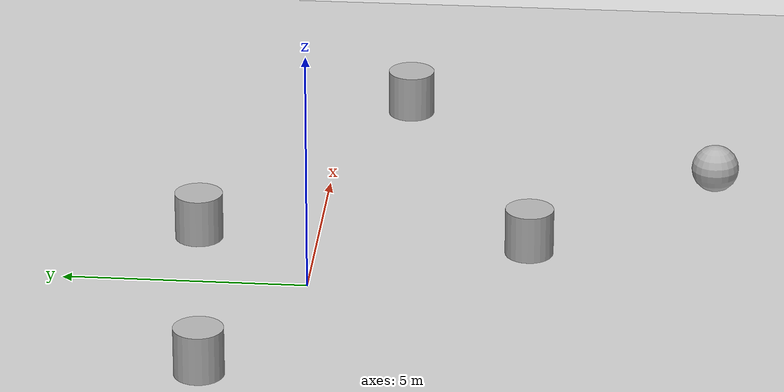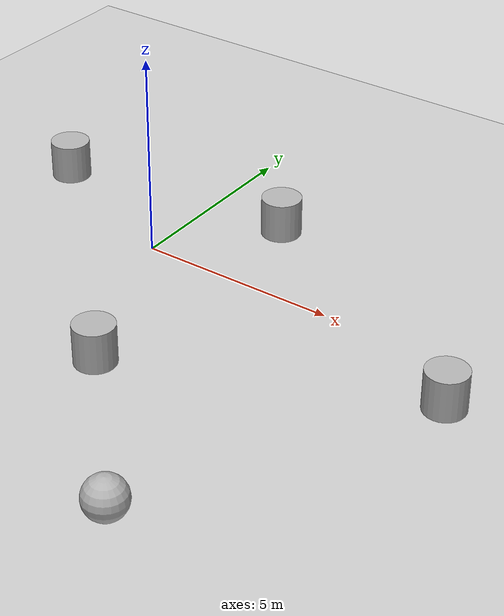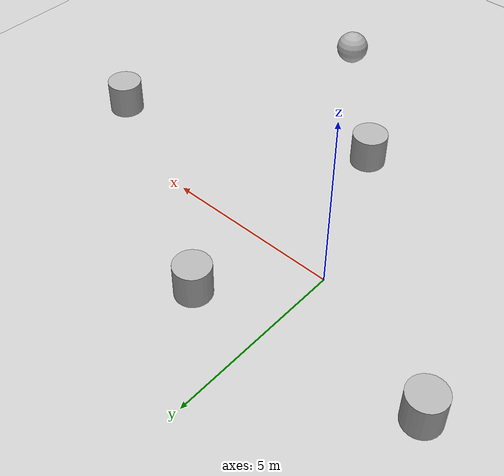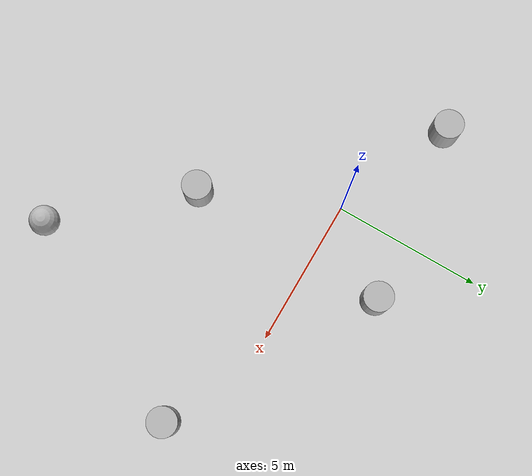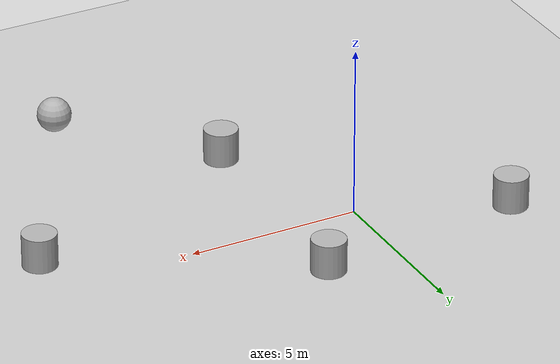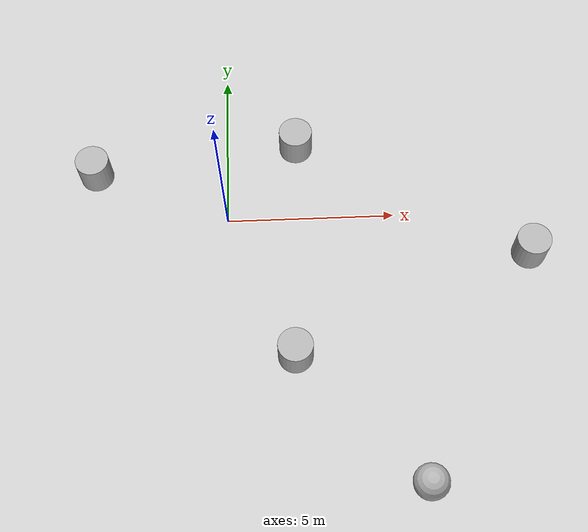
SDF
<sdf version='1.10'>
  <world name='default'>
    <physics name='1ms' type='ignored'>
      <max_step_size>0.001</max_step_size>
      <real_time_factor>1</real_time_factor>
      <real_time_update_rate>1000</real_time_update_rate>
    </physics>
    <gravity>0 0 -9.8000000000000007</gravity>
    <magnetic_field>5.5644999999999998e-06 2.2875799999999999e-05 -4.2388400000000002e-05</magnetic_field>
    <atmosphere type='adiabatic'/>
    <scene>
      <ambient>0.400000006 0.400000006 0.400000006 1</ambient>
      <background>0.699999988 0.699999988 0.699999988 1</background>
      <shadows>true</shadows>
    </scene>
    <model name='ground_plane'>
      <static>true</static>
      <link name='link'>
        <collision name='collision'>
          <geometry>
            <plane>
              <normal>0 0 1</normal>
              <size>100 100</size>
            </plane>
          </geometry>
          <surface>
            <friction>
              <ode/>
            </friction>
            <bounce/>
            <contact/>
          </surface>
        </collision>
        <visual name='visual'>
          <geometry>
            <plane>
              <normal>0 0 1</normal>
              <size>100 100</size>
            </plane>
          </geometry>
          <material>
            <ambient>0.800000012 0.800000012 0.800000012 1</ambient>
            <diffuse>0.800000012 0.800000012 0.800000012 1</diffuse>
            <specular>0.800000012 0.800000012 0.800000012 1</specular>
          </material>
        </visual>
        <pose>0 0 0 0 0 0</pose>
        <inertial>
          <pose>0 0 0 0 0 0</pose>
          <mass>1</mass>
          <inertia>
            <ixx>1</ixx>
            <ixy>0</ixy>
            <ixz>0</ixz>
            <iyy>1</iyy>
            <iyz>0</iyz>
            <izz>1</izz>
          </inertia>
        </inertial>
        <enable_wind>false</enable_wind>
      </link>
      <pose>0 0 0 0 0 0</pose>
      <self_collide>false</self_collide>
    </model>
    <model name='cylinder'>
      <pose>2.1223667236025392 2.4670150771113395 0.5 0 0 0</pose>
      <link name='cylinder_link'>
        <inertial>
          <inertia>
            <ixx>0.14580000000000001</ixx>
            <ixy>0</ixy>
            <ixz>0</ixz>
            <iyy>0.14580000000000001</iyy>
            <iyz>0</iyz>
            <izz>0.125</izz>
          </inertia>
          <mass>1</mass>
          <pose>0 0 0 0 0 0</pose>
        </inertial>
        <collision name='cylinder_collision'>
          <geometry>
            <cylinder>
              <radius>0.5</radius>
              <length>1</length>
            </cylinder>
          </geometry>
          <surface>
            <friction>
              <ode/>
            </friction>
            <bounce/>
            <contact/>
          </surface>
        </collision>
        <visual name='cylinder_visual'>
          <geometry>
            <cylinder>
              <radius>0.5</radius>
              <length>1</length>
            </cylinder>
          </geometry>
          <material>
            <ambient>0.300000012 0.300000012 0.300000012 1</ambient>
            <diffuse>0.699999988 0.699999988 0.699999988 1</diffuse>
            <specular>1 1 1 1</specular>
          </material>
        </visual>
        <pose>0 0 0 0 0 0</pose>
        <enable_wind>false</enable_wind>
      </link>
      <static>false</static>
      <self_collide>false</self_collide>
    </model>
    <model name='cylinder_0'>
      <pose>1.9041028659754673 -4.3957274092772964 0.5 0 0 0</pose>
      <link name='cylinder_link'>
        <inertial>
          <inertia>
            <ixx>0.14580000000000001</ixx>
            <ixy>0</ixy>
            <ixz>0</ixz>
            <iyy>0.14580000000000001</iyy>
            <iyz>0</iyz>
            <izz>0.125</izz>
          </inertia>
          <mass>1</mass>
          <pose>0 0 0 0 0 0</pose>
        </inertial>
        <collision name='cylinder_collision'>
          <geometry>
            <cylinder>
              <radius>0.5</radius>
              <length>1</length>
            </cylinder>
          </geometry>
          <surface>
            <friction>
              <ode/>
            </friction>
            <bounce/>
            <contact/>
          </surface>
        </collision>
        <visual name='cylinder_visual'>
          <geometry>
            <cylinder>
              <radius>0.5</radius>
              <length>1</length>
            </cylinder>
          </geometry>
          <material>
            <ambient>0.300000012 0.300000012 0.300000012 1</ambient>
            <diffuse>0.699999988 0.699999988 0.699999988 1</diffuse>
            <specular>1 1 1 1</specular>
          </material>
        </visual>
        <pose>0 0 0 0 0 0</pose>
        <enable_wind>false</enable_wind>
      </link>
      <static>false</static>
      <self_collide>false</self_collide>
    </model>
    <model name='cylinder_1'>
      <pose>-4.0305859710959346 1.6970443358757379 0.5 0 0 0</pose>
      <link name='cylinder_link'>
        <inertial>
          <inertia>
            <ixx>0.14580000000000001</ixx>
            <ixy>0</ixy>
            <ixz>0</ixz>
            <iyy>0.14580000000000001</iyy>
            <iyz>0</iyz>
            <izz>0.125</izz>
          </inertia>
          <mass>1</mass>
          <pose>0 0 0 0 0 0</pose>
        </inertial>
        <collision name='cylinder_collision'>
          <geometry>
            <cylinder>
              <radius>0.5</radius>
              <length>1</length>
            </cylinder>
          </geometry>
          <surface>
            <friction>
              <ode/>
            </friction>
            <bounce/>
            <contact/>
          </surface>
        </collision>
        <visual name='cylinder_visual'>
          <geometry>
            <cylinder>
              <radius>0.5</radius>
              <length>1</length>
            </cylinder>
          </geometry>
          <material>
            <ambient>0.300000012 0.300000012 0.300000012 1</ambient>
            <diffuse>0.699999988 0.699999988 0.699999988 1</diffuse>
            <specular>1 1 1 1</specular>
          </material>
        </visual>
        <pose>0 0 0 0 0 0</pose>
        <enable_wind>false</enable_wind>
      </link>
      <static>false</static>
      <self_collide>false</self_collide>
    </model>
    <model name='cylinder_2'>
      <pose>8.9200111497405565 -1.4243669439167719 0.5 0 0 0</pose>
      <link name='cylinder_link'>
        <inertial>
          <inertia>
            <ixx>0.14580000000000001</ixx>
            <ixy>0</ixy>
            <ixz>0</ixz>
            <iyy>0.14580000000000001</iyy>
            <iyz>0</iyz>
            <izz>0.125</izz>
          </inertia>
          <mass>1</mass>
          <pose>0 0 0 0 0 0</pose>
        </inertial>
        <collision name='cylinder_collision'>
          <geometry>
            <cylinder>
              <radius>0.5</radius>
              <length>1</length>
            </cylinder>
          </geometry>
          <surface>
            <friction>
              <ode/>
            </friction>
            <bounce/>
            <contact/>
          </surface>
        </collision>
        <visual name='cylinder_visual'>
          <geometry>
            <cylinder>
              <radius>0.5</radius>
              <length>1</length>
            </cylinder>
          </geometry>
          <material>
            <ambient>0.300000012 0.300000012 0.300000012 1</ambient>
            <diffuse>0.699999988 0.699999988 0.699999988 1</diffuse>
            <specular>1 1 1 1</specular>
          </material>
        </visual>
        <pose>0 0 0 0 0 0</pose>
        <enable_wind>false</enable_wind>
      </link>
      <static>false</static>
      <self_collide>false</self_collide>
    </model>
    <model name='sphere'>
      <pose>5.3519860346859272 -8.1737496247708545 0.5 0 0 0</pose>
      <link name='sphere_link'>
        <inertial>
          <inertia>
            <ixx>0.10000000000000001</ixx>
            <ixy>0</ixy>
            <ixz>0</ixz>
            <iyy>0.10000000000000001</iyy>
            <iyz>0</iyz>
            <izz>0.10000000000000001</izz>
          </inertia>
          <mass>1</mass>
          <pose>0 0 0 0 0 0</pose>
        </inertial>
        <collision name='sphere_collision'>
          <geometry>
            <sphere>
              <radius>0.5</radius>
            </sphere>
          </geometry>
          <surface>
            <friction>
              <ode/>
            </friction>
            <bounce/>
            <contact/>
          </surface>
        </collision>
        <visual name='sphere_visual'>
          <geometry>
            <sphere>
              <radius>0.5</radius>
            </sphere>
          </geometry>
          <material>
            <ambient>0.300000012 0.300000012 0.300000012 1</ambient>
            <diffuse>0.699999988 0.699999988 0.699999988 1</diffuse>
            <specular>1 1 1 1</specular>
          </material>
        </visual>
        <pose>0 0 0 0 0 0</pose>
        <enable_wind>false</enable_wind>
      </link>
      <static>false</static>
      <self_collide>false</self_collide>
    </model>
    <light name='sun' type='directional'>
      <pose>0 0 10 0 0 0</pose>
      <cast_shadows>true</cast_shadows>
      <intensity>1</intensity>
      <direction>-0.5 0.10000000000000001 -0.90000000000000002</direction>
      <diffuse>0.800000012 0.800000012 0.800000012 1</diffuse>
      <specular>0.200000003 0.200000003 0.200000003 1</specular>
      <attenuation>
        <range>1000</range>
        <linear>0.01</linear>
        <constant>0.90000000000000002</constant>
        <quadratic>0.001</quadratic>
      </attenuation>
      <spot>
        <inner_angle>0</inner_angle>
        <outer_angle>0</outer_angle>
        <falloff>0</falloff>
      </spot>
    </light>
  </world>
</sdf>
